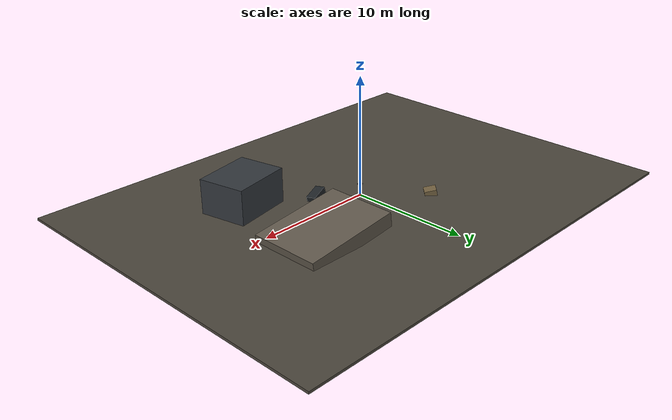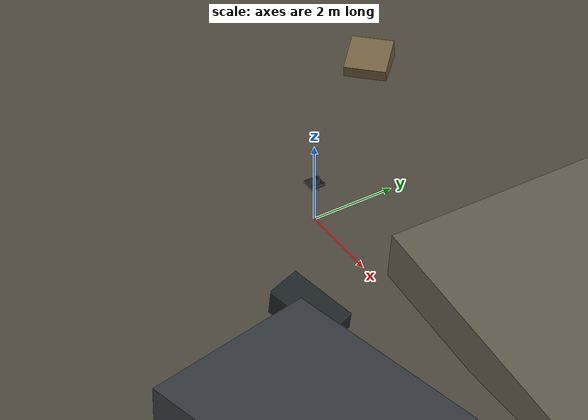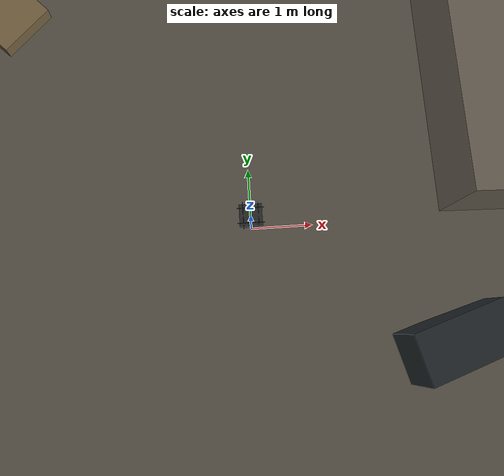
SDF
<?xml version="1.0"?>
<sdf version="1.9">
  <world name="rescue_7inch_disaster">
    <physics name="1ms" type="ignored">
      <max_step_size>0.001</max_step_size>
      <real_time_factor>1.0</real_time_factor>
    </physics>

    <plugin filename="gz-sim-physics-system" name="gz::sim::systems::Physics"/>
    <plugin filename="gz-sim-sensors-system" name="gz::sim::systems::Sensors">
      <render_engine>ogre2</render_engine>
    </plugin>
    <plugin filename="gz-sim-scene-broadcaster-system" name="gz::sim::systems::SceneBroadcaster"/>
    <plugin filename="gz-sim-user-commands-system" name="gz::sim::systems::UserCommands"/>
    <plugin filename="gz-sim-imu-system" name="gz::sim::systems::Imu"/>
    <plugin filename="gz-sim-navsat-system" name="gz::sim::systems::NavSat"/>
    <plugin filename="gz-sim-air-pressure-system" name="gz::sim::systems::AirPressure"/>
    <plugin filename="gz-sim-magnetometer-system" name="gz::sim::systems::Magnetometer"/>

    <scene>
      <ambient>0.65 0.65 0.65</ambient>
      <background>0.25 0.30 0.35</background>
      <sky/>
    </scene>
    <spherical_coordinates>
      <latitude_deg>-35.363262</latitude_deg>
      <longitude_deg>149.165237</longitude_deg>
      <elevation>584</elevation>
      <heading_deg>0</heading_deg>
      <surface_model>EARTH_WGS84</surface_model>
    </spherical_coordinates>
    <light type="directional" name="sun">
      <cast_shadows>true</cast_shadows>
      <pose>0 0 20 0 0 0</pose>
      <diffuse>0.8 0.8 0.8 1</diffuse>
      <specular>0.2 0.2 0.2 1</specular>
      <direction>-0.4 0.2 -0.9</direction>
    </light>

    <!-- Controlled first-pass disaster terrain. The ground and obstacles are
         intentionally primitive so flight dynamics remain debuggable. -->
    <model name="disaster_ground">
      <static>true</static>
      <link name="ground_link">
        <collision name="ground_collision"><geometry><box><size>40 30 0.2</size></box></geometry></collision>
        <visual name="ground_visual"><geometry><box><size>40 30 0.2</size></box></geometry>
          <material><diffuse>0.30 0.28 0.24 1</diffuse></material>
        </visual>
      </link>
    </model>
    <model name="uneven_terrain_ramp">
      <static>true</static><pose>7 3 0.6 0 0.12 0</pose>
      <link name="ramp_link"><collision name="collision"><geometry><box><size>8 6 1.2</size></box></geometry></collision>
        <visual name="visual"><geometry><box><size>8 6 1.2</size></box></geometry><material><diffuse>0.38 0.35 0.30 1</diffuse></material></visual>
      </link>
    </model>
    <model name="damaged_structure">
      <static>true</static><pose>8 -5 1.5 0 0 0.2</pose>
      <link name="structure_link"><collision name="collision"><geometry><box><size>5 4 3</size></box></geometry></collision>
        <visual name="visual"><geometry><box><size>5 4 3</size></box></geometry><material><diffuse>0.20 0.22 0.24 1</diffuse></material></visual>
      </link>
    </model>
    <model name="debris_a"><static>true</static><pose>3 -2 0.35 0.1 0.2 0.3</pose><link name="link"><collision name="c"><geometry><box><size>1.6 0.8 0.7</size></box></geometry></collision><visual name="v"><geometry><box><size>1.6 0.8 0.7</size></box></geometry><material><diffuse>0.12 0.14 0.15 1</diffuse></material></visual></link></model>
    <model name="debris_b"><static>true</static><pose>-4 4 0.25 0.2 0 0.8</pose><link name="link"><collision name="c"><geometry><box><size>1.0 1.0 0.5</size></box></geometry></collision><visual name="v"><geometry><box><size>1.0 1.0 0.5</size></box></geometry><material><diffuse>0.45 0.38 0.25 1</diffuse></material></visual></link></model>

    <include><uri>model://rescue_7inch</uri><name>rescue_7inch</name><pose>0 0 1 0 0 0</pose></include>
    <include><uri>model://rescue_7inch_qr_target</uri><name>rescue_target</name><pose>2 10 0.02 0 0 0</pose></include>

    <!-- Initial calm profile. Change only this block for later wind tests. -->
    <wind>
      <linear_velocity>0 0 0</linear_velocity>
    </wind>
    <plugin filename="gz-sim-wind-effects-system" name="gz::sim::systems::WindEffects">
      <force_approximation_scaling_factor>1</force_approximation_scaling_factor>
      <horizontal>
        <magnitude>
          <time_for_rise>10</time_for_rise>
          <sin><amplitude_percent>0.05</amplitude_percent><period>60</period></sin>
          <noise type="gaussian"><mean>0</mean><stddev>0.2</stddev></noise>
        </magnitude>
        <direction>
          <time_for_rise>30</time_for_rise>
          <sin><amplitude>0.3</amplitude><period>20</period></sin>
          <noise type="gaussian"><mean>0</mean><stddev>0.03</stddev></noise>
        </direction>
      </horizontal>
      <vertical><noise type="gaussian"><mean>0</mean><stddev>0.03</stddev></noise></vertical>
    </plugin>
  </world>
</sdf>

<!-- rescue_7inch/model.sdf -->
<sdf version='1.9'>
	<model name="rescue_7inch">
  <!-- Model-level flag is required for included-model links to receive wind. -->
  <enable_wind>true</enable_wind>
  <self_collide>false</self_collide>
    <pose>0 0 0 0 0 0</pose>
    <link name='base_link'>
      <!-- Required for Gazebo WindEffects to apply physical wind force. -->
      <enable_wind>true</enable_wind>
      <velocity_decay>
        <linear>0.0</linear>
        <angular>0.0</angular>
      </velocity_decay>
      <inertial>
        <pose>0 0 0 0 0 0</pose>
        <mass>1.33</mass>
        <inertia>
          <ixx>0.020</ixx>
          <ixy>0</ixy>
          <ixz>0</ixz>
          <iyy>0.020</iyy>
          <iyz>0</iyz>
          <izz>0.035</izz>
        </inertia>
      </inertial>
<!-- Downward RGB camera -->
      <sensor name="down_camera" type="camera">
        <pose>0 0 -0.10 0 1.5708 0</pose>
        <gz_frame_id>base_link</gz_frame_id>
        <camera>
          <horizontal_fov>1.5708</horizontal_fov>
          <image>
            <width>640</width>
            <height>480</height>
            <format>RGB_INT8</format>
          </image>
          <clip>
            <near>0.05</near>
            <far>500</far>
          </clip>
        </camera>
        <always_on>1</always_on>
        <update_rate>20</update_rate>
        <visualize>false</visualize>
      </sensor>

      <collision name='base_collision'>
        <pose>0 0 0 0 0 0</pose>
        <geometry>
          <box>
            <size>0.18 0.14 0.045</size>
          </box>
        </geometry>
        <surface>
          <contact>
            <ode>
              <max_vel>100.0</max_vel>
              <min_depth>0.001</min_depth>
            </ode>
          </contact>
          <friction>
            <ode>
              <mu>1.0</mu>
              <mu2>1.0</mu2>
            </ode>
          </friction>
        </surface>
      </collision>
      <collision name='front_left_leg_collision'>
        <pose>0.075 0.055 -0.11 0 0 0</pose>
        <geometry>
          <cylinder>
            <radius>0.005</radius>
            <length>0.17</length>
          </cylinder>
        </geometry>
        <surface>
          <contact>
            <ode>
              <max_vel>100.0</max_vel>
              <min_depth>0.001</min_depth>
            </ode>
          </contact>
          <friction>
            <ode>
              <mu>100000.0</mu>
              <mu2>100000.0</mu2>
            </ode>
          </friction>
        </surface>
      </collision>
      <collision name='front_right_leg_collision'>
        <pose>0.075 -0.055 -0.11 0 0 0</pose>
        <geometry>
          <cylinder>
            <radius>0.005</radius>
            <length>0.17</length>
          </cylinder>
        </geometry>
        <surface>
          <contact>
            <ode>
              <max_vel>100.0</max_vel>
              <min_depth>0.001</min_depth>
            </ode>
          </contact>
          <friction>
            <ode>
              <mu>100000.0</mu>
              <mu2>100000.0</mu2>
            </ode>
          </friction>
        </surface>
      </collision>
      <collision name='rear_left_leg_collision'>
        <pose>-0.075 0.055 -0.11 0 0 0</pose>
        <geometry>
          <cylinder>
            <radius>0.005</radius>
            <length>0.17</length>
          </cylinder>
        </geometry>
        <surface>
          <contact>
            <ode>
              <max_vel>100.0</max_vel>
              <min_depth>0.001</min_depth>
            </ode>
          </contact>
          <friction>
            <ode>
              <mu>100000.0</mu>
              <mu2>100000.0</mu2>
            </ode>
          </friction>
        </surface>
      </collision>
      <collision name='rear_right_leg_collision'>
        <pose>-0.075 -0.055 -0.11 0 0 0</pose>
        <geometry>
          <cylinder>
            <radius>0.005</radius>
            <length>0.17</length>
          </cylinder>
        </geometry>
        <surface>
          <contact>
            <ode>
              <max_vel>100.0</max_vel>
              <min_depth>0.001</min_depth>
            </ode>
          </contact>
          <friction>
            <ode>
              <mu>100000.0</mu>
              <mu2>100000.0</mu2>
            </ode>
          </friction>
        </surface>
      </collision>

      <visual name='base_visual'>
        <pose>0 0 0 0 0 0</pose>
        <geometry>
          <box>
            <size>0.34 0.34 0.045</size>
          </box>
        </geometry>
        <material>
          <ambient>0.08 0.08 0.08 1</ambient>
          <diffuse>0.14 0.14 0.14 1</diffuse>
          <specular>0.20 0.20 0.20 1</specular>
          <pbr>
            <metal>
              <metalness>0.35</metalness>
              <roughness>0.55</roughness>
            </metal>
          </pbr>
        </material>
      </visual>
      <visual name='front_left_leg_visual'>
        <pose>0.075 0.055 -0.11 0 0 0</pose>
        <geometry>
          <cylinder>
            <radius>0.005</radius>
            <length>0.17</length>
          </cylinder>
        </geometry>
        <material>
          <ambient>0.05 0.05 0.05</ambient>
          <diffuse>0.05 0.05 0.05</diffuse>
          <specular>0.01 0.01 0.01 1.0</specular>
          <pbr>
            <metal>
              <metalness>0.5</metalness>
              <roughness>0.5</roughness>
            </metal>
          </pbr>
        </material>
      </visual>
      <visual name='front_right_leg_visual'>
        <pose>0.075 -0.055 -0.11 0 0 0</pose>
        <geometry>
          <cylinder>
            <radius>0.005</radius>
            <length>0.17</length>
          </cylinder>
        </geometry>
        <material>
          <ambient>0.05 0.05 0.05</ambient>
          <diffuse>0.05 0.05 0.05</diffuse>
          <specular>0.01 0.01 0.01 1.0</specular>
          <pbr>
            <metal>
              <metalness>0.5</metalness>
              <roughness>0.5</roughness>
            </metal>
          </pbr>
        </material>
      </visual>
      <visual name='rear_left_leg_visual'>
        <pose>-0.075 0.055 -0.11 0 0 0</pose>
        <geometry>
          <cylinder>
            <radius>0.005</radius>
            <length>0.17</length>
          </cylinder>
        </geometry>
        <material>
          <ambient>0.05 0.05 0.05</ambient>
          <diffuse>0.05 0.05 0.05</diffuse>
          <specular>0.01 0.01 0.01 1.0</specular>
          <pbr>
            <metal>
              <metalness>0.5</metalness>
              <roughness>0.5</roughness>
            </metal>
          </pbr>
        </material>
      </visual>
      <visual name='rear_right_leg_visual'>
        <pose>-0.075 -0.055 -0.11 0 0 0</pose>
        <geometry>
          <cylinder>
            <radius>0.005</radius>
            <length>0.17</length>
          </cylinder>
        </geometry>
        <material>
          <ambient>0.05 0.05 0.05</ambient>
          <diffuse>0.05 0.05 0.05</diffuse>
          <specular>0.01 0.01 0.01 1.0</specular>
          <pbr>
            <metal>
              <metalness>0.5</metalness>
              <roughness>0.5</roughness>
            </metal>
          </pbr>
        </material>
      </visual>
    </link>
    <link name='imu_link'>
      <inertial>
        <pose>0 0 0 0 0 0</pose>
        <mass>0.010</mass>
        <inertia>
          <ixx>0.00001</ixx>
          <ixy>0</ixy>
          <ixz>0</ixz>
          <iyy>0.00002</iyy>
          <iyz>0</iyz>
          <izz>0.00002</izz>
        </inertia>
      </inertial>
      <sensor name="imu_sensor" type="imu">
        <gz_frame_id>imu_link</gz_frame_id>
        <pose degrees="true">0 0 0 180 0 0</pose>
        <always_on>1</always_on>
        <update_rate>1000.0</update_rate>
      </sensor>
    </link>
    <joint name='imu_joint' type='revolute'>
      <child>imu_link</child>
      <parent>base_link</parent>
      <axis>
        <xyz>0 0 1</xyz>
        <limit>
          <lower>0</lower>
          <upper>0</upper>
          <effort>0</effort>
          <velocity>0</velocity>
        </limit>
        <dynamics>
          <damping>1.0</damping>
        </dynamics>
      </axis>
    </joint>

    <!-- Sensor-role links represent the BLITZ Mini F745 architecture.
         Their masses are included in the 1.500 kg AUW budget. -->
    <link name='gps_link'>
      <inertial>
        <mass>0.010</mass>
        <inertia><ixx>1e-6</ixx><iyy>1e-6</iyy><izz>1e-6</izz></inertia>
      </inertial>
      <sensor name='gps_sensor' type='navsat'>
        <gz_frame_id>gps_link</gz_frame_id>
        <always_on>1</always_on>
        <update_rate>10</update_rate>
      </sensor>
    </link>
    <joint name='gps_joint' type='fixed'>
      <parent>base_link</parent><child>gps_link</child>
    </joint>

    <link name='barometer_link'>
      <inertial>
        <mass>0.005</mass>
        <inertia><ixx>1e-6</ixx><iyy>1e-6</iyy><izz>1e-6</izz></inertia>
      </inertial>
      <sensor name='barometer_sensor' type='air_pressure'>
        <gz_frame_id>barometer_link</gz_frame_id>
        <always_on>1</always_on>
        <update_rate>50</update_rate>
      </sensor>
    </link>
    <joint name='barometer_joint' type='fixed'>
      <parent>base_link</parent><child>barometer_link</child>
    </joint>

    <link name='compass_link'>
      <inertial>
        <mass>0.005</mass>
        <inertia><ixx>1e-6</ixx><iyy>1e-6</iyy><izz>1e-6</izz></inertia>
      </inertial>
      <sensor name='compass_sensor' type='magnetometer'>
        <gz_frame_id>compass_link</gz_frame_id>
        <always_on>1</always_on>
        <update_rate>100</update_rate>
      </sensor>
    </link>
    <joint name='compass_joint' type='fixed'>
      <parent>base_link</parent><child>compass_link</child>
    </joint>

  <link name='rotor_0'>
    <pose>+0.113137 -0.113137 0.030 0 0 0</pose>

    <inertial>
        <pose>0 0 0 0 0 0</pose>
        <mass>0.035</mass>
        <inertia>
          <ixx>9.75e-06</ixx>
          <ixy>0</ixy>
          <ixz>0</ixz>
          <iyy>0.000166704</iyy>
          <iyz>0</iyz>
          <izz>0.000167604</izz>
        </inertia>
      </inertial>

    <visual name='propeller_visual'>
      <pose>0 0 0 0 0 0</pose>
      <geometry>
        <box>
          <size>0.1778 0.008 0.002</size>
        </box>
      </geometry>
      <material>
        <ambient>0.05 0.05 0.05 1</ambient>
        <diffuse>0.10 0.10 0.10 1</diffuse>
        <specular>0.20 0.20 0.20 1</specular>
      </material>
    </visual>

    <visual name='propeller_visual_90deg'>
      <pose>0 0 0 0 0 1.57079632679</pose>
      <geometry>
        <box>
          <size>0.1778 0.006 0.002</size>
        </box>
      </geometry>
      <material>
        <ambient>0.05 0.05 0.05 1</ambient>
        <diffuse>0.10 0.10 0.10 1</diffuse>
        <specular>0.20 0.20 0.20 1</specular>
      </material>
    </visual>

  </link>
<joint name='rotor_0_joint' type='revolute'>
      <child>rotor_0</child>
      <parent>base_link</parent>
      <axis>
        <xyz>0 0 1</xyz>
        <limit>
          <lower>-1e+16</lower>
          <upper>1e+16</upper>
        </limit>
        <dynamics>
          <damping>0.004</damping>
        </dynamics>
      </axis>
    </joint>

  <link name='rotor_1'>
    <pose>-0.113137 +0.113137 0.030 0 0 0</pose>

    <inertial>
        <pose>0 0 0 0 0 0</pose>
        <mass>0.035</mass>
        <inertia>
          <ixx>9.75e-06</ixx>
          <ixy>0</ixy>
          <ixz>0</ixz>
          <iyy>0.000166704</iyy>
          <iyz>0</iyz>
          <izz>0.000167604</izz>
        </inertia>
      </inertial>

    <visual name='propeller_visual'>
      <pose>0 0 0 0 0 0</pose>
      <geometry>
        <box>
          <size>0.1778 0.008 0.002</size>
        </box>
      </geometry>
      <material>
        <ambient>0.05 0.05 0.05 1</ambient>
        <diffuse>0.10 0.10 0.10 1</diffuse>
        <specular>0.20 0.20 0.20 1</specular>
      </material>
    </visual>

    <visual name='propeller_visual_90deg'>
      <pose>0 0 0 0 0 1.57079632679</pose>
      <geometry>
        <box>
          <size>0.1778 0.006 0.002</size>
        </box>
      </geometry>
      <material>
        <ambient>0.05 0.05 0.05 1</ambient>
        <diffuse>0.10 0.10 0.10 1</diffuse>
        <specular>0.20 0.20 0.20 1</specular>
      </material>
    </visual>

  </link>
<joint name='rotor_1_joint' type='revolute'>
      <child>rotor_1</child>
      <parent>base_link</parent>
      <axis>
        <xyz>0 0 1</xyz>
        <limit>
          <lower>-1e+16</lower>
          <upper>1e+16</upper>
        </limit>
        <dynamics>
          <damping>0.004</damping>
        </dynamics>
      </axis>
    </joint>

  <link name='rotor_2'>
    <pose>+0.113137 +0.113137 0.030 0 0 0</pose>

    <inertial>
        <pose>0 0 0 0 0 0</pose>
        <mass>0.035</mass>
        <inertia>
          <ixx>9.75e-06</ixx>
          <ixy>0</ixy>
          <ixz>0</ixz>
          <iyy>0.000166704</iyy>
          <iyz>0</iyz>
          <izz>0.000167604</izz>
        </inertia>
      </inertial>

    <visual name='propeller_visual'>
      <pose>0 0 0 0 0 0</pose>
      <geometry>
        <box>
          <size>0.1778 0.008 0.002</size>
        </box>
      </geometry>
      <material>
        <ambient>0.05 0.05 0.05 1</ambient>
        <diffuse>0.10 0.10 0.10 1</diffuse>
        <specular>0.20 0.20 0.20 1</specular>
      </material>
    </visual>

    <visual name='propeller_visual_90deg'>
      <pose>0 0 0 0 0 1.57079632679</pose>
      <geometry>
        <box>
          <size>0.1778 0.006 0.002</size>
        </box>
      </geometry>
      <material>
        <ambient>0.05 0.05 0.05 1</ambient>
        <diffuse>0.10 0.10 0.10 1</diffuse>
        <specular>0.20 0.20 0.20 1</specular>
      </material>
    </visual>

  </link>
<joint name='rotor_2_joint' type='revolute'>
      <child>rotor_2</child>
      <parent>base_link</parent>
      <axis>
        <xyz>0 0 1</xyz>
        <limit>
          <lower>-1e+16</lower>
          <upper>1e+16</upper>
        </limit>
        <dynamics>
          <damping>0.004</damping>
        </dynamics>
      </axis>
    </joint>

  <link name='rotor_3'>
    <pose>-0.113137 -0.113137 0.030 0 0 0</pose>

    <inertial>
        <pose>0 0 0 0 0 0</pose>
        <mass>0.035</mass>
        <inertia>
          <ixx>9.75e-06</ixx>
          <ixy>0</ixy>
          <ixz>0</ixz>
          <iyy>0.000166704</iyy>
          <iyz>0</iyz>
          <izz>0.000167604</izz>
        </inertia>
      </inertial>

    <visual name='propeller_visual'>
      <pose>0 0 0 0 0 0</pose>
      <geometry>
        <box>
          <size>0.1778 0.008 0.002</size>
        </box>
      </geometry>
      <material>
        <ambient>0.05 0.05 0.05 1</ambient>
        <diffuse>0.10 0.10 0.10 1</diffuse>
        <specular>0.20 0.20 0.20 1</specular>
      </material>
    </visual>

    <visual name='propeller_visual_90deg'>
      <pose>0 0 0 0 0 1.57079632679</pose>
      <geometry>
        <box>
          <size>0.1778 0.006 0.002</size>
        </box>
      </geometry>
      <material>
        <ambient>0.05 0.05 0.05 1</ambient>
        <diffuse>0.10 0.10 0.10 1</diffuse>
        <specular>0.20 0.20 0.20 1</specular>
      </material>
    </visual>

  </link>
<joint name='rotor_3_joint' type='revolute'>
      <child>rotor_3</child>
      <parent>base_link</parent>
      <axis>
        <xyz>0 0 1</xyz>
        <limit>
          <lower>-1e+16</lower>
          <upper>1e+16</upper>
        </limit>
        <dynamics>
          <damping>0.004</damping>
        </dynamics>
      </axis>
    </joint>

    <!-- First-pass 7-inch propeller aerodynamics. Coefficients are simulation
         assumptions and must be calibrated against measured thrust data. -->
    <plugin filename="gz-sim-lift-drag-system" name="gz::sim::systems::LiftDrag">
      <a0>0.3</a0><alpha_stall>1.4</alpha_stall><cla>4.25</cla><cda>0.10</cda>
      <cla_stall>-0.025</cla_stall><area>0.002</area><air_density>1.2041</air_density>
      <cp>0.084 0 0</cp><forward>0 1 0</forward><upward>0 0 1</upward><link_name>rotor_0</link_name>
    </plugin>
    <plugin filename="gz-sim-lift-drag-system" name="gz::sim::systems::LiftDrag">
      <a0>0.3</a0><alpha_stall>1.4</alpha_stall><cla>4.25</cla><cda>0.10</cda>
      <cla_stall>-0.025</cla_stall><area>0.002</area><air_density>1.2041</air_density>
      <cp>-0.084 0 0</cp><forward>0 -1 0</forward><upward>0 0 1</upward><link_name>rotor_0</link_name>
    </plugin>
    <plugin filename="gz-sim-lift-drag-system" name="gz::sim::systems::LiftDrag">
      <a0>0.3</a0><alpha_stall>1.4</alpha_stall><cla>4.25</cla><cda>0.10</cda>
      <cla_stall>-0.025</cla_stall><area>0.002</area><air_density>1.2041</air_density>
      <cp>0.084 0 0</cp><forward>0 1 0</forward><upward>0 0 1</upward><link_name>rotor_1</link_name>
    </plugin>
    <plugin filename="gz-sim-lift-drag-system" name="gz::sim::systems::LiftDrag">
      <a0>0.3</a0><alpha_stall>1.4</alpha_stall><cla>4.25</cla><cda>0.10</cda>
      <cla_stall>-0.025</cla_stall><area>0.002</area><air_density>1.2041</air_density>
      <cp>-0.084 0 0</cp><forward>0 -1 0</forward><upward>0 0 1</upward><link_name>rotor_1</link_name>
    </plugin>
    <plugin filename="gz-sim-lift-drag-system" name="gz::sim::systems::LiftDrag">
      <a0>0.3</a0><alpha_stall>1.4</alpha_stall><cla>4.25</cla><cda>0.10</cda>
      <cla_stall>-0.025</cla_stall><area>0.002</area><air_density>1.2041</air_density>
      <cp>0.084 0 0</cp><forward>0 -1 0</forward><upward>0 0 1</upward><link_name>rotor_2</link_name>
    </plugin>
    <plugin filename="gz-sim-lift-drag-system" name="gz::sim::systems::LiftDrag">
      <a0>0.3</a0><alpha_stall>1.4</alpha_stall><cla>4.25</cla><cda>0.10</cda>
      <cla_stall>-0.025</cla_stall><area>0.002</area><air_density>1.2041</air_density>
      <cp>-0.084 0 0</cp><forward>0 1 0</forward><upward>0 0 1</upward><link_name>rotor_2</link_name>
    </plugin>
    <plugin filename="gz-sim-lift-drag-system" name="gz::sim::systems::LiftDrag">
      <a0>0.3</a0><alpha_stall>1.4</alpha_stall><cla>4.25</cla><cda>0.10</cda>
      <cla_stall>-0.025</cla_stall><area>0.002</area><air_density>1.2041</air_density>
      <cp>0.084 0 0</cp><forward>0 -1 0</forward><upward>0 0 1</upward><link_name>rotor_3</link_name>
    </plugin>
    <plugin filename="gz-sim-lift-drag-system" name="gz::sim::systems::LiftDrag">
      <a0>0.3</a0><alpha_stall>1.4</alpha_stall><cla>4.25</cla><cda>0.10</cda>
      <cla_stall>-0.025</cla_stall><area>0.002</area><air_density>1.2041</air_density>
      <cp>-0.084 0 0</cp><forward>0 1 0</forward><upward>0 0 1</upward><link_name>rotor_3</link_name>
    </plugin>
    <plugin filename="gz-sim-apply-joint-force-system" name="gz::sim::systems::ApplyJointForce"><joint_name>rotor_0_joint</joint_name></plugin>
    <plugin filename="gz-sim-apply-joint-force-system" name="gz::sim::systems::ApplyJointForce"><joint_name>rotor_1_joint</joint_name></plugin>
    <plugin filename="gz-sim-apply-joint-force-system" name="gz::sim::systems::ApplyJointForce"><joint_name>rotor_2_joint</joint_name></plugin>
    <plugin filename="gz-sim-apply-joint-force-system" name="gz::sim::systems::ApplyJointForce"><joint_name>rotor_3_joint</joint_name></plugin>

    <plugin name="ArduPilotPlugin"
      filename="ArduPilotPlugin">

      <fdm_addr>127.0.0.1</fdm_addr>
      <fdm_port_in>9003</fdm_port_in>

      <connectionTimeoutMaxCount>5</connectionTimeoutMaxCount>
      <lock_step>1</lock_step>
      <no_time_sync>1</no_time_sync>
      <have_32_channels>0</have_32_channels>

      <modelXYZToAirplaneXForwardZDown degrees="true">0 0 0 180 0 0</modelXYZToAirplaneXForwardZDown>
      <gazeboXYZToNED degrees="true">0 0 0 180 0 90</gazeboXYZToNED>

      <imuName>imu_sensor</imuName>

      <control channel="0">
        <jointName>rotor_0_joint</jointName>
        <useForce>1</useForce>
        <multiplier>838</multiplier>
        <offset>0</offset>
        <servo_min>1100</servo_min>
        <servo_max>1900</servo_max>
        <type>VELOCITY</type>
        <p_gain>0.20</p_gain>
        <i_gain>0</i_gain>
        <d_gain>0</d_gain>
        <i_max>0</i_max>
        <i_min>0</i_min>
        <cmd_max>2.5</cmd_max>
        <cmd_min>-2.5</cmd_min>
        <controlVelocitySlowdownSim>1</controlVelocitySlowdownSim>
      </control>

      <control channel="1">
        <jointName>rotor_1_joint</jointName>
        <useForce>1</useForce>
        <multiplier>838</multiplier>
        <offset>0</offset>
        <servo_min>1100</servo_min>
        <servo_max>1900</servo_max>
        <type>VELOCITY</type>
        <p_gain>0.20</p_gain>
        <i_gain>0</i_gain>
        <d_gain>0</d_gain>
        <i_max>0</i_max>
        <i_min>0</i_min>
        <cmd_max>2.5</cmd_max>
        <cmd_min>-2.5</cmd_min>
        <controlVelocitySlowdownSim>1</controlVelocitySlowdownSim>
      </control>

      <control channel="2">
        <jointName>rotor_2_joint</jointName>
        <useForce>1</useForce>
        <multiplier>-838</multiplier>
        <offset>0</offset>
        <servo_min>1100</servo_min>
        <servo_max>1900</servo_max>
        <type>VELOCITY</type>
        <p_gain>0.20</p_gain>
        <i_gain>0</i_gain>
        <d_gain>0</d_gain>
        <i_max>0</i_max>
        <i_min>0</i_min>
        <cmd_max>2.5</cmd_max>
        <cmd_min>-2.5</cmd_min>
        <controlVelocitySlowdownSim>1</controlVelocitySlowdownSim>
      </control>

      <control channel="3">
        <jointName>rotor_3_joint</jointName>
        <useForce>1</useForce>
        <multiplier>-838</multiplier>
        <offset>0</offset>
        <servo_min>1100</servo_min>
        <servo_max>1900</servo_max>
        <type>VELOCITY</type>
        <p_gain>0.20</p_gain>
        <i_gain>0</i_gain>
        <d_gain>0</d_gain>
        <i_max>0</i_max>
        <i_min>0</i_min>
        <cmd_max>2.5</cmd_max>
        <cmd_min>-2.5</cmd_min>
        <controlVelocitySlowdownSim>1</controlVelocitySlowdownSim>
      </control>

    </plugin>

  </model>
</sdf>

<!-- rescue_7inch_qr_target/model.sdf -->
<sdf version="1.9">
  <model name="qr_target">
    <static>true</static>

    <link name="link">

      <visual name="qr_visual">
        <pose>0 0 0.01 0 0 0</pose>

        <geometry>
          <plane>
            <normal>0 0 1</normal>
            <size>2 2</size>
          </plane>
        </geometry>

        <material>
          <diffuse>1 1 1 1</diffuse>
          <pbr>
            <metal>
              <albedo_map>model://rescue_7inch_qr_target/materials/textures/qr.png</albedo_map>
              <metalness>0</metalness>
              <roughness>0.9</roughness>
            </metal>
          </pbr>
        </material>

        <cast_shadows>false</cast_shadows>
      </visual>

    </link>
  </model>
</sdf>
